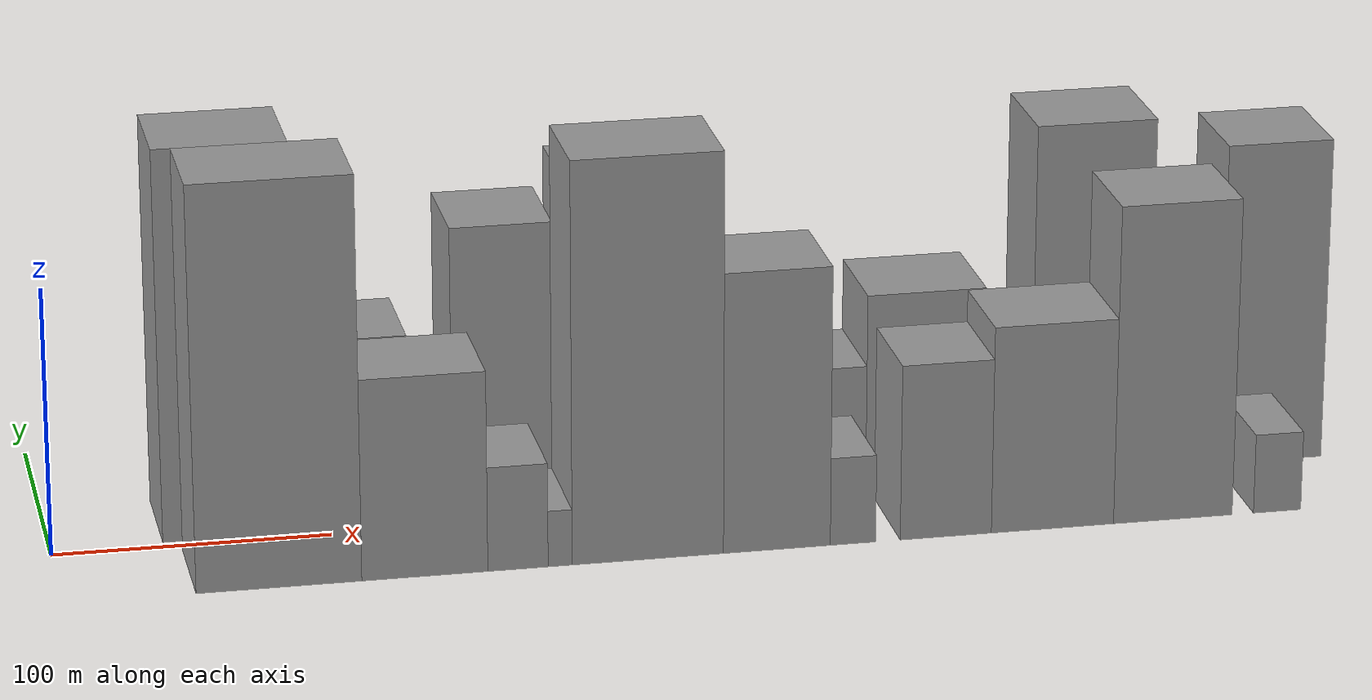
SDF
<sdf version="1.6">
 <world name="default">
  <scene>
   <sky><clouds><speed>12</speed></clouds></sky>
   <ambient>0.4 0.4 0.4 1</ambient>
   <background>0.7 0.7 0.7 1</background>
   <shadows>1</shadows>
  </scene>
  <gravity>0 0 -9.8066</gravity>
  <magnetic_field>6e-06 2.3e-05 -4.2e-05</magnetic_field>
  <physics default="0" name="default_physics" type="ode">
   <ode>
    <solver>
     <type>quick</type>
     <iters>10</iters>
     <sor>1.0</sor>
     <use_dynamic_moi_rescaling>0</use_dynamic_moi_rescaling>
    </solver>
    <constraints>
     <cfm>0</cfm>
     <erp>0.2</erp>
     <contact_max_correcting_vel>100</contact_max_correcting_vel>
     <contact_surface_layer>0.001</contact_surface_layer>
    </constraints>
   </ode>
   <max_step_size>0.004</max_step_size>
   <real_time_factor>1</real_time_factor>
   <real_time_update_rate>250</real_time_update_rate>
  </physics>
  <light name="sun" type="directional">
   <pose>0 0 10 0 0 0</pose>
   <diffuse>0.8 0.8 0.8 1</diffuse>
   <specular>0.2 0.2 0.2 1</specular>
   <attenuation>
    <range>1000</range>
    <constant>0.9</constant>
    <linear>0.01</linear>
    <quadratic>0.001</quadratic>
   </attenuation>
   <direction>-0.5 0.1 -0.9</direction>
  </light>
  <model name="building_1">
   <static>1</static>
   <pose>63.9267 24.5000 0 0.000000 0.000000 1.570796</pose>
   <link name="link">
    <pose>0 0 73.50 0 0 0</pose>
    <collision name="collision"><geometry><box><size>40.0000 47.8533 147.0000</size></box></geometry></collision>
    <visual name="visual">
     <cast_shadows>0</cast_shadows>
     <geometry><box><size>40.0000 47.8533 147.0000</size></box></geometry>
     <material>
      <script>
       <uri>model://grey_wall/materials/scripts</uri>
       <uri>model://grey_wall/materials/textures</uri>
       <name>vrc/grey_wall</name>
      </script>
     </material>
    </visual>
   </link>
  </model>
  <model name="building_2">
   <static>1</static>
   <pose>108.2276 24.5000 0 0.000000 0.000000 1.570796</pose>
   <link name="link">
    <pose>0 0 36.00 0 0 0</pose>
    <collision name="collision"><geometry><box><size>40.0000 40.7487 72.0000</size></box></geometry></collision>
    <visual name="visual">
     <cast_shadows>0</cast_shadows>
     <geometry><box><size>40.0000 40.7487 72.0000</size></box></geometry>
     <material>
      <script>
       <uri>model://grey_wall/materials/scripts</uri>
       <uri>model://grey_wall/materials/textures</uri>
       <name>vrc/grey_wall</name>
      </script>
     </material>
    </visual>
   </link>
  </model>
  <model name="building_3">
   <static>1</static>
   <pose>138.0149 24.5000 0 0.000000 0.000000 1.570796</pose>
   <link name="link">
    <pose>0 0 7.50 0 0 0</pose>
    <collision name="collision"><geometry><box><size>40.0000 6.8259 15.0000</size></box></geometry></collision>
    <visual name="visual">
     <cast_shadows>0</cast_shadows>
     <geometry><box><size>40.0000 6.8259 15.0000</size></box></geometry>
     <material>
      <script>
       <uri>model://grey_wall/materials/scripts</uri>
       <uri>model://grey_wall/materials/textures</uri>
       <name>vrc/grey_wall</name>
      </script>
     </material>
    </visual>
   </link>
  </model>
  <model name="building_4">
   <static>1</static>
   <pose>162.8270 24.5000 0 0.000000 0.000000 1.570796</pose>
   <link name="link">
    <pose>0 0 55.50 0 0 0</pose>
    <collision name="collision"><geometry><box><size>40.0000 36.7982 111.0000</size></box></geometry></collision>
    <visual name="visual">
     <cast_shadows>0</cast_shadows>
     <geometry><box><size>40.0000 36.7982 111.0000</size></box></geometry>
     <material>
      <script>
       <uri>model://grey_wall/materials/scripts</uri>
       <uri>model://grey_wall/materials/textures</uri>
       <name>vrc/grey_wall</name>
      </script>
     </material>
    </visual>
   </link>
  </model>
  <model name="building_5">
   <static>1</static>
   <pose>209.3767 24.5000 0 0.000000 0.000000 1.570796</pose>
   <link name="link">
    <pose>0 0 63.00 0 0 0</pose>
    <collision name="collision"><geometry><box><size>40.0000 48.3013 126.0000</size></box></geometry></collision>
    <visual name="visual">
     <cast_shadows>0</cast_shadows>
     <geometry><box><size>40.0000 48.3013 126.0000</size></box></geometry>
     <material>
      <script>
       <uri>model://grey_wall/materials/scripts</uri>
       <uri>model://grey_wall/materials/textures</uri>
       <name>vrc/grey_wall</name>
      </script>
     </material>
    </visual>
   </link>
  </model>
  <model name="building_6">
   <static>1</static>
   <pose>241.3622 24.5000 0 0.000000 0.000000 1.570796</pose>
   <link name="link">
    <pose>0 0 15.00 0 0 0</pose>
    <collision name="collision"><geometry><box><size>40.0000 15.6695 30.0000</size></box></geometry></collision>
    <visual name="visual">
     <cast_shadows>0</cast_shadows>
     <geometry><box><size>40.0000 15.6695 30.0000</size></box></geometry>
     <material>
      <script>
       <uri>model://grey_wall/materials/scripts</uri>
       <uri>model://grey_wall/materials/textures</uri>
       <name>vrc/grey_wall</name>
      </script>
     </material>
    </visual>
   </link>
  </model>
  <model name="building_7">
   <static>1</static>
   <pose>262.2853 24.5000 0 0.000000 0.000000 1.570796</pose>
   <link name="link">
    <pose>0 0 19.50 0 0 0</pose>
    <collision name="collision"><geometry><box><size>40.0000 20.1768 39.0000</size></box></geometry></collision>
    <visual name="visual">
     <cast_shadows>0</cast_shadows>
     <geometry><box><size>40.0000 20.1768 39.0000</size></box></geometry>
     <material>
      <script>
       <uri>model://grey_wall/materials/scripts</uri>
       <uri>model://grey_wall/materials/textures</uri>
       <name>vrc/grey_wall</name>
      </script>
     </material>
    </visual>
   </link>
  </model>
  <model name="building_8">
   <static>1</static>
   <pose>284.4079 24.5000 0 0.000000 0.000000 1.570796</pose>
   <link name="link">
    <pose>0 0 24.00 0 0 0</pose>
    <collision name="collision"><geometry><box><size>40.0000 24.0683 48.0000</size></box></geometry></collision>
    <visual name="visual">
     <cast_shadows>0</cast_shadows>
     <geometry><box><size>40.0000 24.0683 48.0000</size></box></geometry>
     <material>
      <script>
       <uri>model://grey_wall/materials/scripts</uri>
       <uri>model://grey_wall/materials/textures</uri>
       <name>vrc/grey_wall</name>
      </script>
     </material>
    </visual>
   </link>
  </model>
  <model name="building_9">
   <static>1</static>
   <pose>318.3922 24.5000 0 0.000000 0.000000 1.570796</pose>
   <link name="link">
    <pose>0 0 37.50 0 0 0</pose>
    <collision name="collision"><geometry><box><size>40.0000 43.9003 75.0000</size></box></geometry></collision>
    <visual name="visual">
     <cast_shadows>0</cast_shadows>
     <geometry><box><size>40.0000 43.9003 75.0000</size></box></geometry>
     <material>
      <script>
       <uri>model://grey_wall/materials/scripts</uri>
       <uri>model://grey_wall/materials/textures</uri>
       <name>vrc/grey_wall</name>
      </script>
     </material>
    </visual>
   </link>
  </model>
  <model name="building_10">
   <static>1</static>
   <pose>349.2791 24.5000 0 0.000000 0.000000 1.570796</pose>
   <link name="link">
    <pose>0 0 15.00 0 0 0</pose>
    <collision name="collision"><geometry><box><size>40.0000 17.8735 30.0000</size></box></geometry></collision>
    <visual name="visual">
     <cast_shadows>0</cast_shadows>
     <geometry><box><size>40.0000 17.8735 30.0000</size></box></geometry>
     <material>
      <script>
       <uri>model://grey_wall/materials/scripts</uri>
       <uri>model://grey_wall/materials/textures</uri>
       <name>vrc/grey_wall</name>
      </script>
     </material>
    </visual>
   </link>
  </model>
  <model name="building_11">
   <static>1</static>
   <pose>380.3897 24.5000 0 0.000000 0.000000 1.570796</pose>
   <link name="link">
    <pose>0 0 67.50 0 0 0</pose>
    <collision name="collision"><geometry><box><size>40.0000 44.3476 135.0000</size></box></geometry></collision>
    <visual name="visual">
     <cast_shadows>0</cast_shadows>
     <geometry><box><size>40.0000 44.3476 135.0000</size></box></geometry>
     <material>
      <script>
       <uri>model://grey_wall/materials/scripts</uri>
       <uri>model://grey_wall/materials/textures</uri>
       <name>vrc/grey_wall</name>
      </script>
     </material>
    </visual>
   </link>
  </model>
  <model name="building_12">
   <static>1</static>
   <pose>416.1252 24.5000 0 0.000000 0.000000 1.570796</pose>
   <link name="link">
    <pose>0 0 24.00 0 0 0</pose>
    <collision name="collision"><geometry><box><size>40.0000 27.1234 48.0000</size></box></geometry></collision>
    <visual name="visual">
     <cast_shadows>0</cast_shadows>
     <geometry><box><size>40.0000 27.1234 48.0000</size></box></geometry>
     <material>
      <script>
       <uri>model://grey_wall/materials/scripts</uri>
       <uri>model://grey_wall/materials/textures</uri>
       <name>vrc/grey_wall</name>
      </script>
     </material>
    </visual>
   </link>
  </model>
  <model name="building_13">
   <static>1</static>
   <pose>449.2854 24.5000 0 0.000000 0.000000 1.570796</pose>
   <link name="link">
    <pose>0 0 61.50 0 0 0</pose>
    <collision name="collision"><geometry><box><size>40.0000 39.1971 123.0000</size></box></geometry></collision>
    <visual name="visual">
     <cast_shadows>0</cast_shadows>
     <geometry><box><size>40.0000 39.1971 123.0000</size></box></geometry>
     <material>
      <script>
       <uri>model://grey_wall/materials/scripts</uri>
       <uri>model://grey_wall/materials/textures</uri>
       <name>vrc/grey_wall</name>
      </script>
     </material>
    </visual>
   </link>
  </model>
  <model name="building_14">
   <static>1</static>
   <pose>75.1057 -24.5000 0 0.000000 0.000000 1.570796</pose>
   <link name="link">
    <pose>0 0 75.00 0 0 0</pose>
    <collision name="collision"><geometry><box><size>40.0000 58.2113 150.0000</size></box></geometry></collision>
    <visual name="visual">
     <cast_shadows>0</cast_shadows>
     <geometry><box><size>40.0000 58.2113 150.0000</size></box></geometry>
     <material>
      <script>
       <uri>model://grey_wall/materials/scripts</uri>
       <uri>model://grey_wall/materials/textures</uri>
       <name>vrc/grey_wall</name>
      </script>
     </material>
    </visual>
   </link>
  </model>
  <model name="building_15">
   <static>1</static>
   <pose>126.5491 -24.5000 0 0.000000 0.000000 1.570796</pose>
   <link name="link">
    <pose>0 0 37.50 0 0 0</pose>
    <collision name="collision"><geometry><box><size>40.0000 44.6755 75.0000</size></box></geometry></collision>
    <visual name="visual">
     <cast_shadows>0</cast_shadows>
     <geometry><box><size>40.0000 44.6755 75.0000</size></box></geometry>
     <material>
      <script>
       <uri>model://grey_wall/materials/scripts</uri>
       <uri>model://grey_wall/materials/textures</uri>
       <name>vrc/grey_wall</name>
      </script>
     </material>
    </visual>
   </link>
  </model>
  <model name="building_16">
   <static>1</static>
   <pose>159.6365 -24.5000 0 0.000000 0.000000 1.570796</pose>
   <link name="link">
    <pose>0 0 19.50 0 0 0</pose>
    <collision name="collision"><geometry><box><size>40.0000 21.4994 39.0000</size></box></geometry></collision>
    <visual name="visual">
     <cast_shadows>0</cast_shadows>
     <geometry><box><size>40.0000 21.4994 39.0000</size></box></geometry>
     <material>
      <script>
       <uri>model://grey_wall/materials/scripts</uri>
       <uri>model://grey_wall/materials/textures</uri>
       <name>vrc/grey_wall</name>
      </script>
     </material>
    </visual>
   </link>
  </model>
  <model name="building_17">
   <static>1</static>
   <pose>174.6930 -24.5000 0 0.000000 0.000000 1.570796</pose>
   <link name="link">
    <pose>0 0 10.50 0 0 0</pose>
    <collision name="collision"><geometry><box><size>40.0000 8.6135 21.0000</size></box></geometry></collision>
    <visual name="visual">
     <cast_shadows>0</cast_shadows>
     <geometry><box><size>40.0000 8.6135 21.0000</size></box></geometry>
     <material>
      <script>
       <uri>model://grey_wall/materials/scripts</uri>
       <uri>model://grey_wall/materials/textures</uri>
       <name>vrc/grey_wall</name>
      </script>
     </material>
    </visual>
   </link>
  </model>
  <model name="building_18">
   <static>1</static>
   <pose>206.1989 -24.5000 0 0.000000 0.000000 1.570796</pose>
   <link name="link">
    <pose>0 0 75.00 0 0 0</pose>
    <collision name="collision"><geometry><box><size>40.0000 54.3985 150.0000</size></box></geometry></collision>
    <visual name="visual">
     <cast_shadows>0</cast_shadows>
     <geometry><box><size>40.0000 54.3985 150.0000</size></box></geometry>
     <material>
      <script>
       <uri>model://grey_wall/materials/scripts</uri>
       <uri>model://grey_wall/materials/textures</uri>
       <name>vrc/grey_wall</name>
      </script>
     </material>
    </visual>
   </link>
  </model>
  <model name="building_19">
   <static>1</static>
   <pose>252.7732 -24.5000 0 0.000000 0.000000 1.570796</pose>
   <link name="link">
    <pose>0 0 52.50 0 0 0</pose>
    <collision name="collision"><geometry><box><size>40.0000 38.7502 105.0000</size></box></geometry></collision>
    <visual name="visual">
     <cast_shadows>0</cast_shadows>
     <geometry><box><size>40.0000 38.7502 105.0000</size></box></geometry>
     <material>
      <script>
       <uri>model://grey_wall/materials/scripts</uri>
       <uri>model://grey_wall/materials/textures</uri>
       <name>vrc/grey_wall</name>
      </script>
     </material>
    </visual>
   </link>
  </model>
  <model name="building_20">
   <static>1</static>
   <pose>280.4021 -24.5000 0 0.000000 0.000000 1.570796</pose>
   <link name="link">
    <pose>0 0 16.50 0 0 0</pose>
    <collision name="collision"><geometry><box><size>40.0000 16.5075 33.0000</size></box></geometry></collision>
    <visual name="visual">
     <cast_shadows>0</cast_shadows>
     <geometry><box><size>40.0000 16.5075 33.0000</size></box></geometry>
     <material>
      <script>
       <uri>model://grey_wall/materials/scripts</uri>
       <uri>model://grey_wall/materials/textures</uri>
       <name>vrc/grey_wall</name>
      </script>
     </material>
    </visual>
   </link>
  </model>
  <model name="building_21">
   <static>1</static>
   <pose>314.3573 -24.5000 0 0.000000 0.000000 1.570796</pose>
   <link name="link">
    <pose>0 0 33.00 0 0 0</pose>
    <collision name="collision"><geometry><box><size>40.0000 33.4030 66.0000</size></box></geometry></collision>
    <visual name="visual">
     <cast_shadows>0</cast_shadows>
     <geometry><box><size>40.0000 33.4030 66.0000</size></box></geometry>
     <material>
      <script>
       <uri>model://grey_wall/materials/scripts</uri>
       <uri>model://grey_wall/materials/textures</uri>
       <name>vrc/grey_wall</name>
      </script>
     </material>
    </visual>
   </link>
  </model>
  <model name="building_22">
   <static>1</static>
   <pose>353.6243 -24.5000 0 0.000000 0.000000 1.570796</pose>
   <link name="link">
    <pose>0 0 39.00 0 0 0</pose>
    <collision name="collision"><geometry><box><size>40.0000 45.1310 78.0000</size></box></geometry></collision>
    <visual name="visual">
     <cast_shadows>0</cast_shadows>
     <geometry><box><size>40.0000 45.1310 78.0000</size></box></geometry>
     <material>
      <script>
       <uri>model://grey_wall/materials/scripts</uri>
       <uri>model://grey_wall/materials/textures</uri>
       <name>vrc/grey_wall</name>
      </script>
     </material>
    </visual>
   </link>
  </model>
  <model name="building_23">
   <static>1</static>
   <pose>398.2551 -24.5000 0 0.000000 0.000000 1.570796</pose>
   <link name="link">
    <pose>0 0 60.00 0 0 0</pose>
    <collision name="collision"><geometry><box><size>40.0000 44.1307 120.0000</size></box></geometry></collision>
    <visual name="visual">
     <cast_shadows>0</cast_shadows>
     <geometry><box><size>40.0000 44.1307 120.0000</size></box></geometry>
     <material>
      <script>
       <uri>model://grey_wall/materials/scripts</uri>
       <uri>model://grey_wall/materials/textures</uri>
       <name>vrc/grey_wall</name>
      </script>
     </material>
    </visual>
   </link>
  </model>
  <model name="building_24">
   <static>1</static>
   <pose>437.1681 -24.5000 0 0.000000 0.000000 1.570796</pose>
   <link name="link">
    <pose>0 0 15.00 0 0 0</pose>
    <collision name="collision"><geometry><box><size>40.0000 17.6953 30.0000</size></box></geometry></collision>
    <visual name="visual">
     <cast_shadows>0</cast_shadows>
     <geometry><box><size>40.0000 17.6953 30.0000</size></box></geometry>
     <material>
      <script>
       <uri>model://grey_wall/materials/scripts</uri>
       <uri>model://grey_wall/materials/textures</uri>
       <name>vrc/grey_wall</name>
      </script>
     </material>
    </visual>
   </link>
  </model>
 </world>
</sdf>
